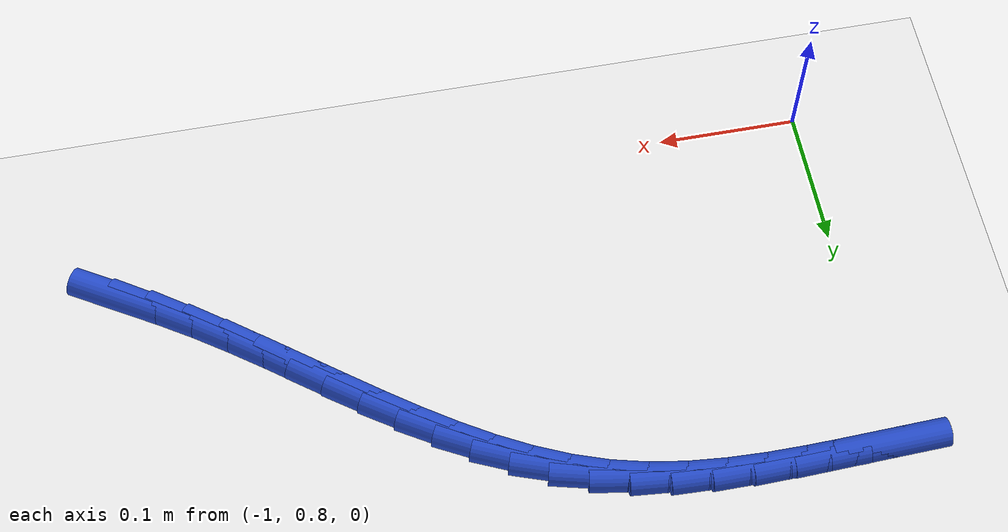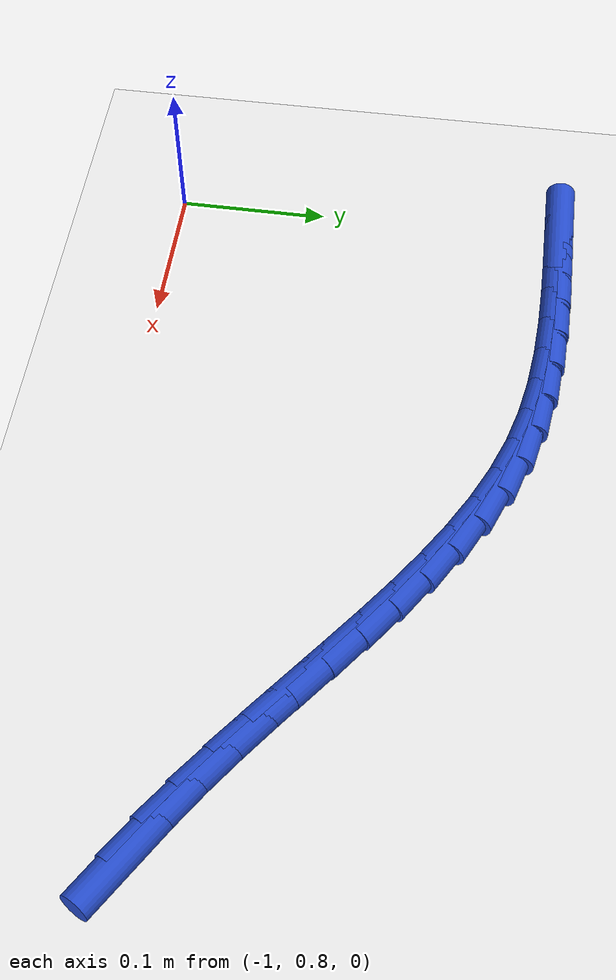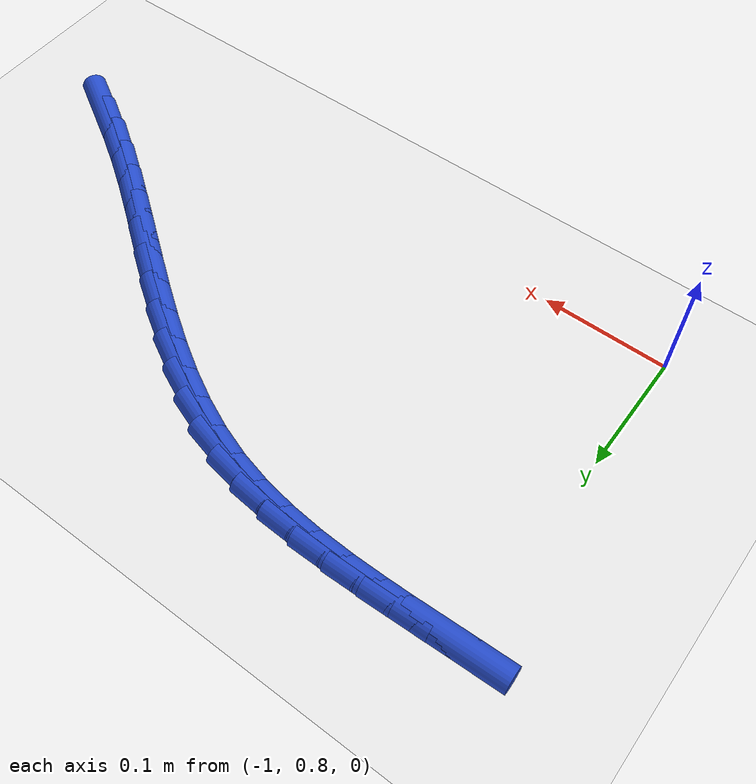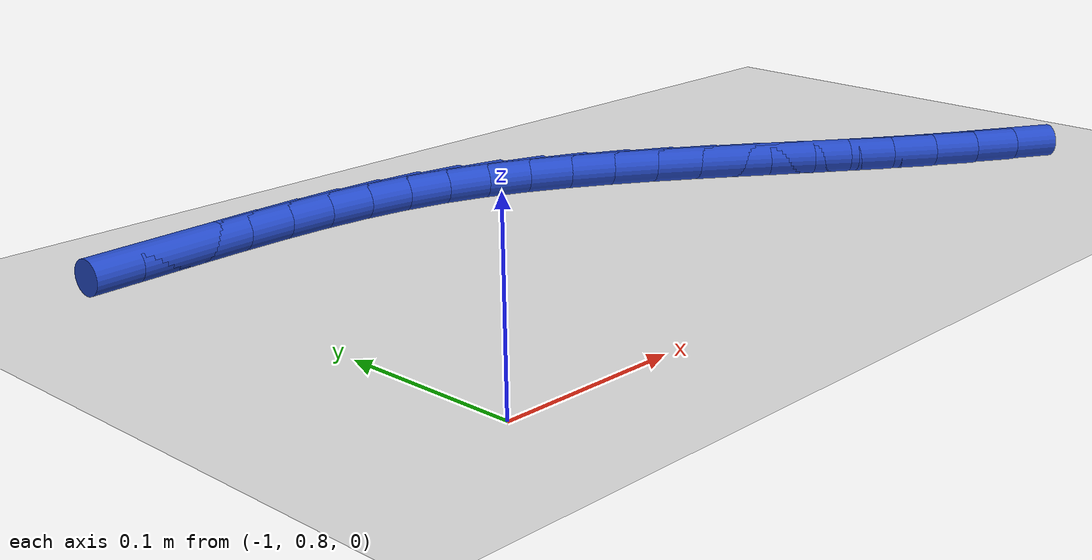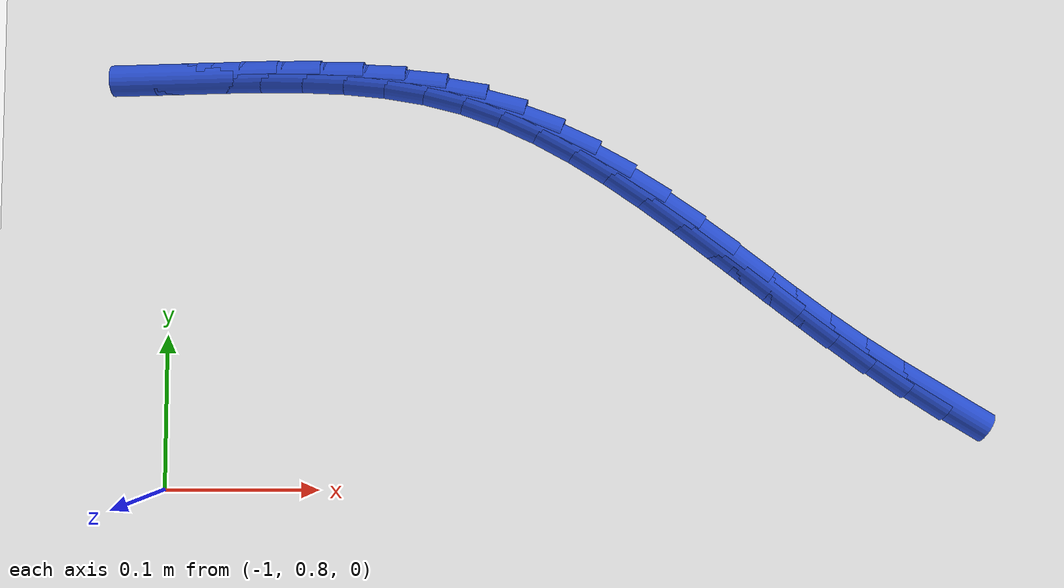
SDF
<sdf version="1.6">
 <world name="default">
  <model name="ground_plane">
   <static>1</static>
   <link name="link">
    <collision name="collision">
     <geometry><plane><normal>0 0 1</normal><size>100 100</size></plane></geometry>
     <surface><friction><ode><mu>100</mu><mu2>50</mu2></ode></friction></surface>
    </collision>
    <visual name="visual">
     <cast_shadows>0</cast_shadows>
     <geometry><plane><normal>0 0 1</normal><size>100 100</size></plane></geometry>
     <material>
      <script><uri>file://media/materials/scripts/gazebo.material</uri><name>Gazebo/WhiteGlow</name></script>
     </material>
    </visual>
   </link>
  </model>
  <model name="line">
   <link name="link_38">
    <pose>-0.5052016460611755 0.8631926739792186 0.01 0 1.57 -0.538701983099247</pose>
    <collision name="collision">
     <geometry><cylinder><radius>0.01</radius><length>0.08</length></cylinder></geometry>
    </collision>
    <visual name="visual">
     <material>
      <script><name>Gazebo/Blue</name><uri>file://media/materials/scripts/gazebo.material</uri></script>
     </material>
     <geometry><cylinder><radius>0.01</radius><length>0.08</length></cylinder></geometry>
    </visual>
   </link>
   <link name="link_39">
    <pose>-0.5290595314803646 0.8774517347390913 0.01 0 1.57 -0.5686784447791046</pose>
    <collision name="collision">
     <geometry><cylinder><radius>0.01</radius><length>0.08</length></cylinder></geometry>
    </collision>
    <visual name="visual">
     <material>
      <script><name>Gazebo/Blue</name><uri>file://media/materials/scripts/gazebo.material</uri></script>
     </material>
     <geometry><cylinder><radius>0.01</radius><length>0.08</length></cylinder></geometry>
    </visual>
   </link>
   <link name="link_40">
    <pose>-0.5526177854610032 0.8925079473684406 0.01 0 1.57 -0.6046107597396618</pose>
    <collision name="collision">
     <geometry><cylinder><radius>0.01</radius><length>0.08</length></cylinder></geometry>
    </collision>
    <visual name="visual">
     <material>
      <script><name>Gazebo/Blue</name><uri>file://media/materials/scripts/gazebo.material</uri></script>
     </material>
     <geometry><cylinder><radius>0.01</radius><length>0.08</length></cylinder></geometry>
    </visual>
   </link>
   <link name="link_41">
    <pose>-0.5757541886841246 0.9084935146566299 0.01 0 1.57 -0.6305902891140529</pose>
    <collision name="collision">
     <geometry><cylinder><radius>0.01</radius><length>0.08</length></cylinder></geometry>
    </collision>
    <visual name="visual">
     <material>
      <script><name>Gazebo/Blue</name><uri>file://media/materials/scripts/gazebo.material</uri></script>
     </material>
     <geometry><cylinder><radius>0.01</radius><length>0.08</length></cylinder></geometry>
    </visual>
   </link>
   <link name="link_42">
    <pose>-0.5985572550843227 0.9251401911830659 0.01 0 1.57 -0.6453732193261358</pose>
    <collision name="collision">
     <geometry><cylinder><radius>0.01</radius><length>0.08</length></cylinder></geometry>
    </collision>
    <visual name="visual">
     <material>
      <script><name>Gazebo/Blue</name><uri>file://media/materials/scripts/gazebo.material</uri></script>
     </material>
     <geometry><cylinder><radius>0.01</radius><length>0.08</length></cylinder></geometry>
    </visual>
   </link>
   <link name="link_43">
    <pose>-0.6211361447183626 0.9421404985037667 0.01 0 1.57 -0.6491340194506082</pose>
    <collision name="collision">
     <geometry><cylinder><radius>0.01</radius><length>0.08</length></cylinder></geometry>
    </collision>
    <visual name="visual">
     <material>
      <script><name>Gazebo/Blue</name><uri>file://media/materials/scripts/gazebo.material</uri></script>
     </material>
     <geometry><cylinder><radius>0.01</radius><length>0.08</length></cylinder></geometry>
    </visual>
   </link>
   <link name="link_44">
    <pose>-0.6436000176430091 0.9591869581747495 0.01 0 1.57 -0.6418353800522637</pose>
    <collision name="collision">
     <geometry><cylinder><radius>0.01</radius><length>0.08</length></cylinder></geometry>
    </collision>
    <visual name="visual">
     <material>
      <script><name>Gazebo/Blue</name><uri>file://media/materials/scripts/gazebo.material</uri></script>
     </material>
     <geometry><cylinder><radius>0.01</radius><length>0.08</length></cylinder></geometry>
    </visual>
   </link>
   <link name="link_45">
    <pose>-0.6660580339150276 0.9759720917520331 0.01 0 1.57 -0.6232104508540871</pose>
    <collision name="collision">
     <geometry><cylinder><radius>0.01</radius><length>0.08</length></cylinder></geometry>
    </collision>
    <visual name="visual">
     <material>
      <script><name>Gazebo/Blue</name><uri>file://media/materials/scripts/gazebo.material</uri></script>
     </material>
     <geometry><cylinder><radius>0.01</radius><length>0.08</length></cylinder></geometry>
    </visual>
   </link>
   <link name="link_46">
    <pose>-0.6886193535911824 0.9921884207916343 0.01 0 1.57 -0.5927759513215365</pose>
    <collision name="collision">
     <geometry><cylinder><radius>0.01</radius><length>0.08</length></cylinder></geometry>
    </collision>
    <visual name="visual">
     <material>
      <script><name>Gazebo/Blue</name><uri>file://media/materials/scripts/gazebo.material</uri></script>
     </material>
     <geometry><cylinder><radius>0.01</radius><length>0.08</length></cylinder></geometry>
    </visual>
   </link>
   <link name="link_47">
    <pose>-0.7113931367282395 1.0075284668495716 0.01 0 1.57 -0.5498857710418007</pose>
    <collision name="collision">
     <geometry><cylinder><radius>0.01</radius><length>0.08</length></cylinder></geometry>
    </collision>
    <visual name="visual">
     <material>
      <script><name>Gazebo/Blue</name><uri>file://media/materials/scripts/gazebo.material</uri></script>
     </material>
     <geometry><cylinder><radius>0.01</radius><length>0.08</length></cylinder></geometry>
    </visual>
   </link>
   <link name="link_48">
    <pose>-0.7344885433829633 1.0216847514818626 0.01 0 1.57 -0.4938456779371377</pose>
    <collision name="collision">
     <geometry><cylinder><radius>0.01</radius><length>0.08</length></cylinder></geometry>
    </collision>
    <visual name="visual">
     <material>
      <script><name>Gazebo/Blue</name><uri>file://media/materials/scripts/gazebo.material</uri></script>
     </material>
     <geometry><cylinder><radius>0.01</radius><length>0.08</length></cylinder></geometry>
    </visual>
   </link>
   <link name="link_49">
    <pose>-0.7580147336121185 1.0343497962445247 0.01 0 1.57 -0.4241167461615771</pose>
    <collision name="collision">
     <geometry><cylinder><radius>0.01</radius><length>0.08</length></cylinder></geometry>
    </collision>
    <visual name="visual">
     <material>
      <script><name>Gazebo/Blue</name><uri>file://media/materials/scripts/gazebo.material</uri></script>
     </material>
     <geometry><cylinder><radius>0.01</radius><length>0.08</length></cylinder></geometry>
    </visual>
   </link>
   <link name="link_50">
    <pose>-0.7820808674724711 1.0452161226935766 0.01 0 1.57 -0.3406269758845627</pose>
    <collision name="collision">
     <geometry><cylinder><radius>0.01</radius><length>0.08</length></cylinder></geometry>
    </collision>
    <visual name="visual">
     <material>
      <script><name>Gazebo/Blue</name><uri>file://media/materials/scripts/gazebo.material</uri></script>
     </material>
     <geometry><cylinder><radius>0.01</radius><length>0.08</length></cylinder></geometry>
    </visual>
   </link>
   <link name="link_51">
    <pose>-0.8067961050207851 1.0539762523850351 0.01 0 1.57 -0.2469386619011326</pose>
    <collision name="collision">
     <geometry><cylinder><radius>0.01</radius><length>0.08</length></cylinder></geometry>
    </collision>
    <visual name="visual">
     <material>
      <script><name>Gazebo/Blue</name><uri>file://media/materials/scripts/gazebo.material</uri></script>
     </material>
     <geometry><cylinder><radius>0.01</radius><length>0.08</length></cylinder></geometry>
    </visual>
   </link>
   <link name="link_52">
    <pose>-0.8322478464903049 1.0603922170231106 0.01 0 1.57 -0.16188282956521138</pose>
    <collision name="collision">
     <geometry><cylinder><radius>0.01</radius><length>0.08</length></cylinder></geometry>
    </collision>
    <visual name="visual">
     <material>
      <script><name>Gazebo/Blue</name><uri>file://media/materials/scripts/gazebo.material</uri></script>
     </material>
     <geometry><cylinder><radius>0.01</radius><length>0.08</length></cylinder></geometry>
    </visual>
   </link>
   <link name="link_53">
    <pose>-0.8583873008118371 1.0646611013631295 0.01 0 1.57 -0.09278360831525811</pose>
    <collision name="collision">
     <geometry><cylinder><radius>0.01</radius><length>0.08</length></cylinder></geometry>
    </collision>
    <visual name="visual">
     <material>
      <script><name>Gazebo/Blue</name><uri>file://media/materials/scripts/gazebo.material</uri></script>
     </material>
     <geometry><cylinder><radius>0.01</radius><length>0.08</length></cylinder></geometry>
    </visual>
   </link>
   <link name="link_54">
    <pose>-0.8851130955607902 1.0671479574144882 0.01 0 1.57 -0.03931135255314148</pose>
    <collision name="collision">
     <geometry><cylinder><radius>0.01</radius><length>0.08</length></cylinder></geometry>
    </collision>
    <visual name="visual">
     <material>
      <script><name>Gazebo/Blue</name><uri>file://media/materials/scripts/gazebo.material</uri></script>
     </material>
     <geometry><cylinder><radius>0.01</radius><length>0.08</length></cylinder></geometry>
    </visual>
   </link>
   <link name="link_55">
    <pose>-0.9123237459095317 1.0682181962497892 0.01 0 1.57 -0.0006897395904578615</pose>
    <collision name="collision">
     <geometry><cylinder><radius>0.01</radius><length>0.08</length></cylinder></geometry>
    </collision>
    <visual name="visual">
     <material>
      <script><name>Gazebo/Blue</name><uri>file://media/materials/scripts/gazebo.material</uri></script>
     </material>
     <geometry><cylinder><radius>0.01</radius><length>0.08</length></cylinder></geometry>
    </visual>
   </link>
   <link name="link_56">
    <pose>-0.9399177670304291 1.0682372289416344 0.01 0 1.57 0.02391438836098097</pose>
    <collision name="collision">
     <geometry><cylinder><radius>0.01</radius><length>0.08</length></cylinder></geometry>
    </collision>
    <visual name="visual">
     <material>
      <script><name>Gazebo/Blue</name><uri>file://media/materials/scripts/gazebo.material</uri></script>
     </material>
     <geometry><cylinder><radius>0.01</radius><length>0.08</length></cylinder></geometry>
    </visual>
   </link>
   <link name="link_57">
    <pose>-0.9677936740958498 1.067570466562627 0.01 0 1.57 0.03516996349496396</pose>
    <collision name="collision">
     <geometry><cylinder><radius>0.01</radius><length>0.08</length></cylinder></geometry>
    </collision>
    <visual name="visual">
     <material>
      <script><name>Gazebo/Blue</name><uri>file://media/materials/scripts/gazebo.material</uri></script>
     </material>
     <geometry><cylinder><radius>0.01</radius><length>0.08</length></cylinder></geometry>
    </visual>
   </link>
   <link name="link_58">
    <pose>-0.9958499822781617 1.0665833201853692 0.01 0 1.57 0.03347289503657778</pose>
    <collision name="collision">
     <geometry><cylinder><radius>0.01</radius><length>0.08</length></cylinder></geometry>
    </collision>
    <visual name="visual">
     <material>
      <script><name>Gazebo/Blue</name><uri>file://media/materials/scripts/gazebo.material</uri></script>
     </material>
     <geometry><cylinder><radius>0.01</radius><length>0.08</length></cylinder></geometry>
    </visual>
   </link>
  </model>
 </world>
</sdf>
